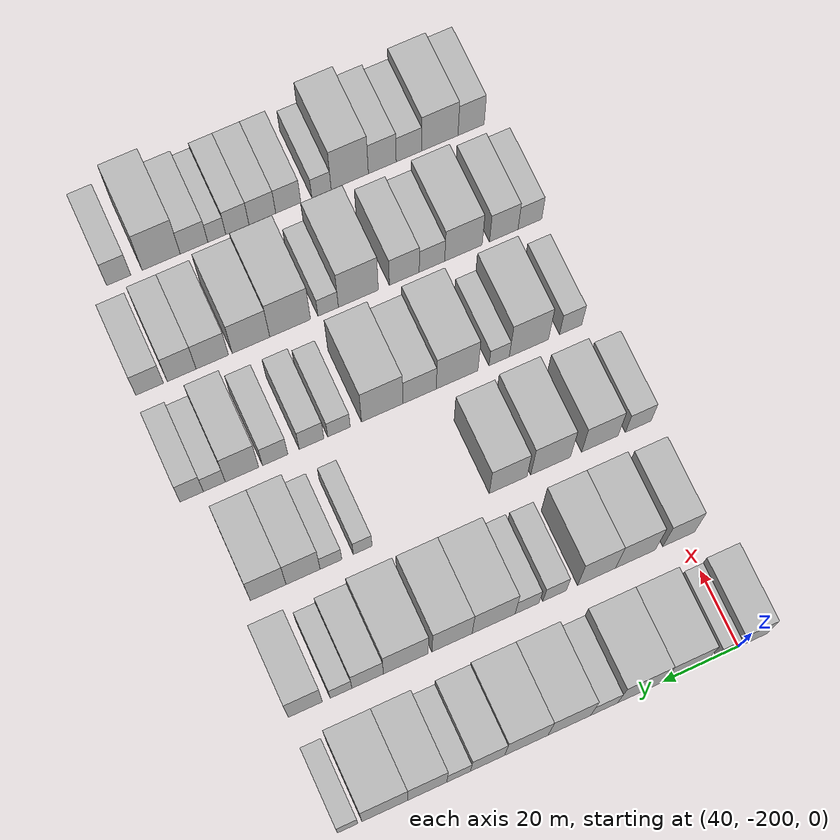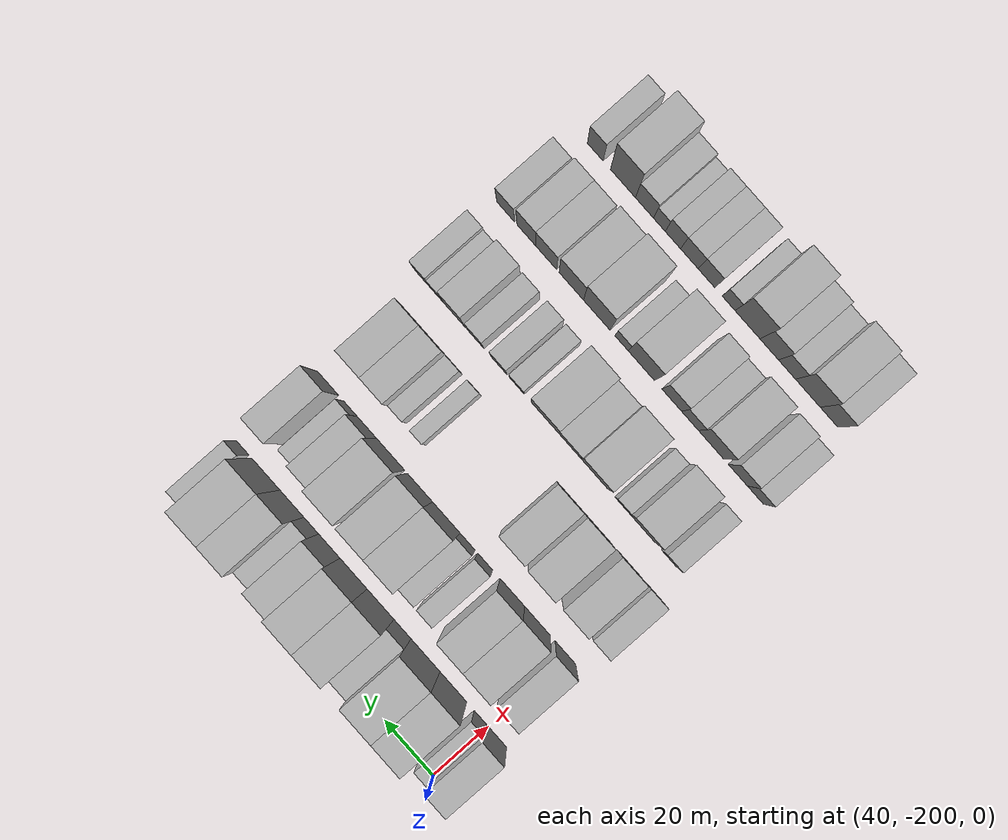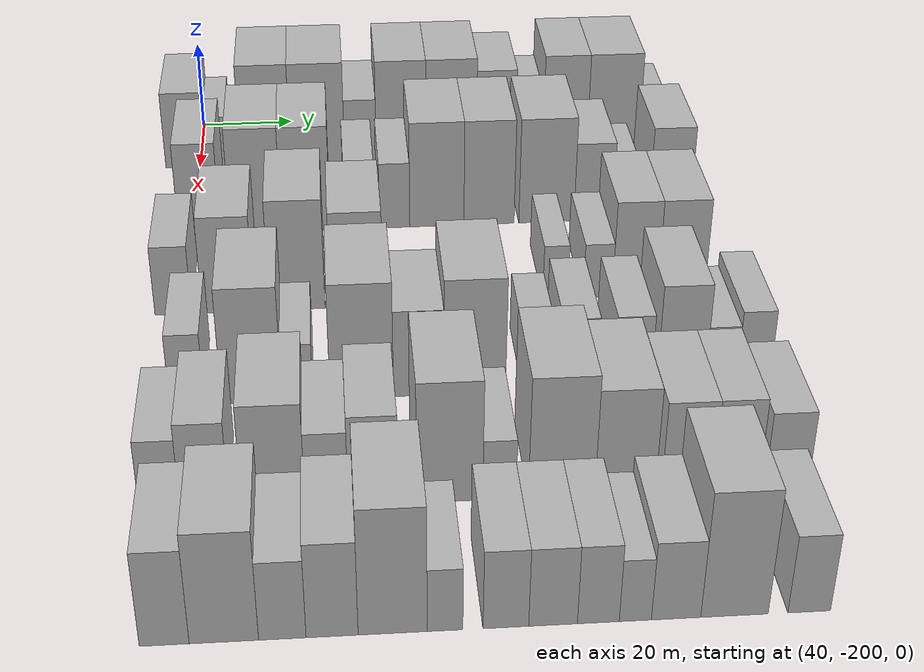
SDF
<sdf version="1.6">
 <world name="default">
  <model name="building_35">
   <static>1</static>
   <pose>50.0000 -203.2133 0 0.000000 0.000000 0.000000</pose>
   <link name="link">
    <pose>0 0 9.00 0 0 0</pose>
    <collision name="collision"><geometry><box><size>20.0000 8.4956 18.0000</size></box></geometry></collision>
    <visual name="visual">
     <cast_shadows>0</cast_shadows>
     <geometry><box><size>20.0000 8.4956 18.0000</size></box></geometry>
     <material>
      <script>
       <uri>model://HANNAS_wall/materials/scripts</uri>
       <uri>model://HANNAS_wall/materials/textures</uri>
       <name>vrc/HANNAS_wall</name>
      </script>
     </material>
    </visual>
   </link>
  </model>
  <model name="building_36">
   <static>1</static>
   <pose>50.0000 -196.5370 0 0.000000 0.000000 0.000000</pose>
   <link name="link">
    <pose>0 0 6.00 0 0 0</pose>
    <collision name="collision"><geometry><box><size>20.0000 4.8569 12.0000</size></box></geometry></collision>
    <visual name="visual">
     <cast_shadows>0</cast_shadows>
     <geometry><box><size>20.0000 4.8569 12.0000</size></box></geometry>
     <material>
      <script>
       <uri>model://HANNAS_wall/materials/scripts</uri>
       <uri>model://HANNAS_wall/materials/textures</uri>
       <name>vrc/HANNAS_wall</name>
      </script>
     </material>
    </visual>
   </link>
  </model>
  <model name="building_37">
   <static>1</static>
   <pose>50.0000 -185.6003 0 0.000000 0.000000 0.000000</pose>
   <link name="link">
    <pose>0 0 12.00 0 0 0</pose>
    <collision name="collision"><geometry><box><size>20.0000 11.0165 24.0000</size></box></geometry></collision>
    <visual name="visual">
     <cast_shadows>0</cast_shadows>
     <geometry><box><size>20.0000 11.0165 24.0000</size></box></geometry>
     <material>
      <script>
       <uri>model://HANNAS_wall/materials/scripts</uri>
       <uri>model://HANNAS_wall/materials/textures</uri>
       <name>vrc/HANNAS_wall</name>
      </script>
     </material>
    </visual>
   </link>
  </model>
  <model name="building_38">
   <static>1</static>
   <pose>50.0000 -174.1456 0 0.000000 0.000000 0.000000</pose>
   <link name="link">
    <pose>0 0 12.00 0 0 0</pose>
    <collision name="collision"><geometry><box><size>20.0000 11.8929 24.0000</size></box></geometry></collision>
    <visual name="visual">
     <cast_shadows>0</cast_shadows>
     <geometry><box><size>20.0000 11.8929 24.0000</size></box></geometry>
     <material>
      <script>
       <uri>model://HANNAS_wall/materials/scripts</uri>
       <uri>model://HANNAS_wall/materials/textures</uri>
       <name>vrc/HANNAS_wall</name>
      </script>
     </material>
    </visual>
   </link>
  </model>
  <model name="building_39">
   <static>1</static>
   <pose>50.0000 -164.7043 0 0.000000 0.000000 0.000000</pose>
   <link name="link">
    <pose>0 0 7.50 0 0 0</pose>
    <collision name="collision"><geometry><box><size>20.0000 6.9897 15.0000</size></box></geometry></collision>
    <visual name="visual">
     <cast_shadows>0</cast_shadows>
     <geometry><box><size>20.0000 6.9897 15.0000</size></box></geometry>
     <material>
      <script>
       <uri>model://HANNAS_wall/materials/scripts</uri>
       <uri>model://HANNAS_wall/materials/textures</uri>
       <name>vrc/HANNAS_wall</name>
      </script>
     </material>
    </visual>
   </link>
  </model>
  <model name="building_40">
   <static>1</static>
   <pose>50.0000 -155.7014 0 0.000000 0.000000 0.000000</pose>
   <link name="link">
    <pose>0 0 12.00 0 0 0</pose>
    <collision name="collision"><geometry><box><size>20.0000 11.0162 24.0000</size></box></geometry></collision>
    <visual name="visual">
     <cast_shadows>0</cast_shadows>
     <geometry><box><size>20.0000 11.0162 24.0000</size></box></geometry>
     <material>
      <script>
       <uri>model://HANNAS_wall/materials/scripts</uri>
       <uri>model://HANNAS_wall/materials/textures</uri>
       <name>vrc/HANNAS_wall</name>
      </script>
     </material>
    </visual>
   </link>
  </model>
  <model name="building_41">
   <static>1</static>
   <pose>50.0000 -144.5966 0 0.000000 0.000000 0.000000</pose>
   <link name="link">
    <pose>0 0 12.00 0 0 0</pose>
    <collision name="collision"><geometry><box><size>20.0000 11.1933 24.0000</size></box></geometry></collision>
    <visual name="visual">
     <cast_shadows>0</cast_shadows>
     <geometry><box><size>20.0000 11.1933 24.0000</size></box></geometry>
     <material>
      <script>
       <uri>model://HANNAS_wall/materials/scripts</uri>
       <uri>model://HANNAS_wall/materials/textures</uri>
       <name>vrc/HANNAS_wall</name>
      </script>
     </material>
    </visual>
   </link>
  </model>
  <model name="building_42">
   <static>1</static>
   <pose>50.0000 -134.6149 0 0.000000 0.000000 0.000000</pose>
   <link name="link">
    <pose>0 0 10.50 0 0 0</pose>
    <collision name="collision"><geometry><box><size>20.0000 8.7701 21.0000</size></box></geometry></collision>
    <visual name="visual">
     <cast_shadows>0</cast_shadows>
     <geometry><box><size>20.0000 8.7701 21.0000</size></box></geometry>
     <material>
      <script>
       <uri>model://HANNAS_wall/materials/scripts</uri>
       <uri>model://HANNAS_wall/materials/textures</uri>
       <name>vrc/HANNAS_wall</name>
      </script>
     </material>
    </visual>
   </link>
  </model>
  <model name="building_43">
   <static>1</static>
   <pose>50.0000 -127.2108 0 0.000000 0.000000 0.000000</pose>
   <link name="link">
    <pose>0 0 7.50 0 0 0</pose>
    <collision name="collision"><geometry><box><size>20.0000 6.0381 15.0000</size></box></geometry></collision>
    <visual name="visual">
     <cast_shadows>0</cast_shadows>
     <geometry><box><size>20.0000 6.0381 15.0000</size></box></geometry>
     <material>
      <script>
       <uri>model://HANNAS_wall/materials/scripts</uri>
       <uri>model://HANNAS_wall/materials/textures</uri>
       <name>vrc/HANNAS_wall</name>
      </script>
     </material>
    </visual>
   </link>
  </model>
  <model name="building_44">
   <static>1</static>
   <pose>50.0000 -119.2499 0 0.000000 0.000000 0.000000</pose>
   <link name="link">
    <pose>0 0 12.00 0 0 0</pose>
    <collision name="collision"><geometry><box><size>20.0000 9.8837 24.0000</size></box></geometry></collision>
    <visual name="visual">
     <cast_shadows>0</cast_shadows>
     <geometry><box><size>20.0000 9.8837 24.0000</size></box></geometry>
     <material>
      <script>
       <uri>model://HANNAS_wall/materials/scripts</uri>
       <uri>model://HANNAS_wall/materials/textures</uri>
       <name>vrc/HANNAS_wall</name>
      </script>
     </material>
    </visual>
   </link>
  </model>
  <model name="building_45">
   <static>1</static>
   <pose>50.0000 -108.4909 0 0.000000 0.000000 0.000000</pose>
   <link name="link">
    <pose>0 0 12.00 0 0 0</pose>
    <collision name="collision"><geometry><box><size>20.0000 11.6342 24.0000</size></box></geometry></collision>
    <visual name="visual">
     <cast_shadows>0</cast_shadows>
     <geometry><box><size>20.0000 11.6342 24.0000</size></box></geometry>
     <material>
      <script>
       <uri>model://HANNAS_wall/materials/scripts</uri>
       <uri>model://HANNAS_wall/materials/textures</uri>
       <name>vrc/HANNAS_wall</name>
      </script>
     </material>
    </visual>
   </link>
  </model>
  <model name="building_46">
   <static>1</static>
   <pose>50.0000 -99.0924 0 0.000000 0.000000 0.000000</pose>
   <link name="link">
    <pose>0 0 6.00 0 0 0</pose>
    <collision name="collision"><geometry><box><size>20.0000 5.1629 12.0000</size></box></geometry></collision>
    <visual name="visual">
     <cast_shadows>0</cast_shadows>
     <geometry><box><size>20.0000 5.1629 12.0000</size></box></geometry>
     <material>
      <script>
       <uri>model://HANNAS_wall/materials/scripts</uri>
       <uri>model://HANNAS_wall/materials/textures</uri>
       <name>vrc/HANNAS_wall</name>
      </script>
     </material>
    </visual>
   </link>
  </model>
  <model name="building_140">
   <static>1</static>
   <pose>79.0000 -198.6680 0 0.000000 0.000000 0.000000</pose>
   <link name="link">
    <pose>0 0 10.50 0 0 0</pose>
    <collision name="collision"><geometry><box><size>20.0000 8.4875 21.0000</size></box></geometry></collision>
    <visual name="visual">
     <cast_shadows>0</cast_shadows>
     <geometry><box><size>20.0000 8.4875 21.0000</size></box></geometry>
     <material>
      <script>
       <uri>model://HANNAS_wall/materials/scripts</uri>
       <uri>model://HANNAS_wall/materials/textures</uri>
       <name>vrc/HANNAS_wall</name>
      </script>
     </material>
    </visual>
   </link>
  </model>
  <model name="building_141">
   <static>1</static>
   <pose>79.0000 -187.1591 0 0.000000 0.000000 0.000000</pose>
   <link name="link">
    <pose>0 0 12.00 0 0 0</pose>
    <collision name="collision"><geometry><box><size>20.0000 10.5304 24.0000</size></box></geometry></collision>
    <visual name="visual">
     <cast_shadows>0</cast_shadows>
     <geometry><box><size>20.0000 10.5304 24.0000</size></box></geometry>
     <material>
      <script>
       <uri>model://HANNAS_wall/materials/scripts</uri>
       <uri>model://HANNAS_wall/materials/textures</uri>
       <name>vrc/HANNAS_wall</name>
      </script>
     </material>
    </visual>
   </link>
  </model>
  <model name="building_142">
   <static>1</static>
   <pose>79.0000 -176.8806 0 0.000000 0.000000 0.000000</pose>
   <link name="link">
    <pose>0 0 12.00 0 0 0</pose>
    <collision name="collision"><geometry><box><size>20.0000 10.0266 24.0000</size></box></geometry></collision>
    <visual name="visual">
     <cast_shadows>0</cast_shadows>
     <geometry><box><size>20.0000 10.0266 24.0000</size></box></geometry>
     <material>
      <script>
       <uri>model://HANNAS_wall/materials/scripts</uri>
       <uri>model://HANNAS_wall/materials/textures</uri>
       <name>vrc/HANNAS_wall</name>
      </script>
     </material>
    </visual>
   </link>
  </model>
  <model name="building_143">
   <static>1</static>
   <pose>79.0000 -165.7952 0 0.000000 0.000000 0.000000</pose>
   <link name="link">
    <pose>0 0 7.50 0 0 0</pose>
    <collision name="collision"><geometry><box><size>20.0000 6.1441 15.0000</size></box></geometry></collision>
    <visual name="visual">
     <cast_shadows>0</cast_shadows>
     <geometry><box><size>20.0000 6.1441 15.0000</size></box></geometry>
     <material>
      <script>
       <uri>model://HANNAS_wall/materials/scripts</uri>
       <uri>model://HANNAS_wall/materials/textures</uri>
       <name>vrc/HANNAS_wall</name>
      </script>
     </material>
    </visual>
   </link>
  </model>
  <model name="building_144">
   <static>1</static>
   <pose>79.0000 -158.5902 0 0.000000 0.000000 0.000000</pose>
   <link name="link">
    <pose>0 0 7.50 0 0 0</pose>
    <collision name="collision"><geometry><box><size>20.0000 6.2660 15.0000</size></box></geometry></collision>
    <visual name="visual">
     <cast_shadows>0</cast_shadows>
     <geometry><box><size>20.0000 6.2660 15.0000</size></box></geometry>
     <material>
      <script>
       <uri>model://HANNAS_wall/materials/scripts</uri>
       <uri>model://HANNAS_wall/materials/textures</uri>
       <name>vrc/HANNAS_wall</name>
      </script>
     </material>
    </visual>
   </link>
  </model>
  <model name="building_145">
   <static>1</static>
   <pose>79.0000 -149.8402 0 0.000000 0.000000 0.000000</pose>
   <link name="link">
    <pose>0 0 12.00 0 0 0</pose>
    <collision name="collision"><geometry><box><size>20.0000 11.2340 24.0000</size></box></geometry></collision>
    <visual name="visual">
     <cast_shadows>0</cast_shadows>
     <geometry><box><size>20.0000 11.2340 24.0000</size></box></geometry>
     <material>
      <script>
       <uri>model://HANNAS_wall/materials/scripts</uri>
       <uri>model://HANNAS_wall/materials/textures</uri>
       <name>vrc/HANNAS_wall</name>
      </script>
     </material>
    </visual>
   </link>
  </model>
  <model name="building_146">
   <static>1</static>
   <pose>79.0000 -138.9980 0 0.000000 0.000000 0.000000</pose>
   <link name="link">
    <pose>0 0 12.00 0 0 0</pose>
    <collision name="collision"><geometry><box><size>20.0000 10.4503 24.0000</size></box></geometry></collision>
    <visual name="visual">
     <cast_shadows>0</cast_shadows>
     <geometry><box><size>20.0000 10.4503 24.0000</size></box></geometry>
     <material>
      <script>
       <uri>model://HANNAS_wall/materials/scripts</uri>
       <uri>model://HANNAS_wall/materials/textures</uri>
       <name>vrc/HANNAS_wall</name>
      </script>
     </material>
    </visual>
   </link>
  </model>
  <model name="building_147">
   <static>1</static>
   <pose>79.0000 -127.0175 0 0.000000 0.000000 0.000000</pose>
   <link name="link">
    <pose>0 0 12.00 0 0 0</pose>
    <collision name="collision"><geometry><box><size>20.0000 11.5106 24.0000</size></box></geometry></collision>
    <visual name="visual">
     <cast_shadows>0</cast_shadows>
     <geometry><box><size>20.0000 11.5106 24.0000</size></box></geometry>
     <material>
      <script>
       <uri>model://HANNAS_wall/materials/scripts</uri>
       <uri>model://HANNAS_wall/materials/textures</uri>
       <name>vrc/HANNAS_wall</name>
      </script>
     </material>
    </visual>
   </link>
  </model>
  <model name="building_148">
   <static>1</static>
   <pose>79.0000 -117.2047 0 0.000000 0.000000 0.000000</pose>
   <link name="link">
    <pose>0 0 9.00 0 0 0</pose>
    <collision name="collision"><geometry><box><size>20.0000 8.1152 18.0000</size></box></geometry></collision>
    <visual name="visual">
     <cast_shadows>0</cast_shadows>
     <geometry><box><size>20.0000 8.1152 18.0000</size></box></geometry>
     <material>
      <script>
       <uri>model://HANNAS_wall/materials/scripts</uri>
       <uri>model://HANNAS_wall/materials/textures</uri>
       <name>vrc/HANNAS_wall</name>
      </script>
     </material>
    </visual>
   </link>
  </model>
  <model name="building_149">
   <static>1</static>
   <pose>79.0000 -110.3679 0 0.000000 0.000000 0.000000</pose>
   <link name="link">
    <pose>0 0 6.00 0 0 0</pose>
    <collision name="collision"><geometry><box><size>20.0000 5.5584 12.0000</size></box></geometry></collision>
    <visual name="visual">
     <cast_shadows>0</cast_shadows>
     <geometry><box><size>20.0000 5.5584 12.0000</size></box></geometry>
     <material>
      <script>
       <uri>model://HANNAS_wall/materials/scripts</uri>
       <uri>model://HANNAS_wall/materials/textures</uri>
       <name>vrc/HANNAS_wall</name>
      </script>
     </material>
    </visual>
   </link>
  </model>
  <model name="building_150">
   <static>1</static>
   <pose>79.0000 -101.2359 0 0.000000 0.000000 0.000000</pose>
   <link name="link">
    <pose>0 0 10.50 0 0 0</pose>
    <collision name="collision"><geometry><box><size>20.0000 8.7056 21.0000</size></box></geometry></collision>
    <visual name="visual">
     <cast_shadows>0</cast_shadows>
     <geometry><box><size>20.0000 8.7056 21.0000</size></box></geometry>
     <material>
      <script>
       <uri>model://HANNAS_wall/materials/scripts</uri>
       <uri>model://HANNAS_wall/materials/textures</uri>
       <name>vrc/HANNAS_wall</name>
      </script>
     </material>
    </visual>
   </link>
  </model>
  <model name="building_250">
   <static>1</static>
   <pose>108.0000 -202.2233 0 0.000000 0.000000 0.000000</pose>
   <link name="link">
    <pose>0 0 7.50 0 0 0</pose>
    <collision name="collision"><geometry><box><size>20.0000 6.9358 15.0000</size></box></geometry></collision>
    <visual name="visual">
     <cast_shadows>0</cast_shadows>
     <geometry><box><size>20.0000 6.9358 15.0000</size></box></geometry>
     <material>
      <script>
       <uri>model://HANNAS_wall/materials/scripts</uri>
       <uri>model://HANNAS_wall/materials/textures</uri>
       <name>vrc/HANNAS_wall</name>
      </script>
     </material>
    </visual>
   </link>
  </model>
  <model name="building_251">
   <static>1</static>
   <pose>108.0000 -191.8537 0 0.000000 0.000000 0.000000</pose>
   <link name="link">
    <pose>0 0 10.50 0 0 0</pose>
    <collision name="collision"><geometry><box><size>20.0000 9.8035 21.0000</size></box></geometry></collision>
    <visual name="visual">
     <cast_shadows>0</cast_shadows>
     <geometry><box><size>20.0000 9.8035 21.0000</size></box></geometry>
     <material>
      <script>
       <uri>model://HANNAS_wall/materials/scripts</uri>
       <uri>model://HANNAS_wall/materials/textures</uri>
       <name>vrc/HANNAS_wall</name>
      </script>
     </material>
    </visual>
   </link>
  </model>
  <model name="building_252">
   <static>1</static>
   <pose>108.0000 -178.6489 0 0.000000 0.000000 0.000000</pose>
   <link name="link">
    <pose>0 0 12.00 0 0 0</pose>
    <collision name="collision"><geometry><box><size>20.0000 10.6063 24.0000</size></box></geometry></collision>
    <visual name="visual">
     <cast_shadows>0</cast_shadows>
     <geometry><box><size>20.0000 10.6063 24.0000</size></box></geometry>
     <material>
      <script>
       <uri>model://HANNAS_wall/materials/scripts</uri>
       <uri>model://HANNAS_wall/materials/textures</uri>
       <name>vrc/HANNAS_wall</name>
      </script>
     </material>
    </visual>
   </link>
  </model>
  <model name="building_253">
   <static>1</static>
   <pose>108.0000 -167.3290 0 0.000000 0.000000 0.000000</pose>
   <link name="link">
    <pose>0 0 10.50 0 0 0</pose>
    <collision name="collision"><geometry><box><size>20.0000 10.0335 21.0000</size></box></geometry></collision>
    <visual name="visual">
     <cast_shadows>0</cast_shadows>
     <geometry><box><size>20.0000 10.0335 21.0000</size></box></geometry>
     <material>
      <script>
       <uri>model://HANNAS_wall/materials/scripts</uri>
       <uri>model://HANNAS_wall/materials/textures</uri>
       <name>vrc/HANNAS_wall</name>
      </script>
     </material>
    </visual>
   </link>
  </model>
  <model name="building_254">
   <static>1</static>
   <pose>108.0000 -128.9897 0 0.000000 0.000000 0.000000</pose>
   <link name="link">
    <pose>0 0 6.00 0 0 0</pose>
    <collision name="collision"><geometry><box><size>20.0000 4.8816 12.0000</size></box></geometry></collision>
    <visual name="visual">
     <cast_shadows>0</cast_shadows>
     <geometry><box><size>20.0000 4.8816 12.0000</size></box></geometry>
     <material>
      <script>
       <uri>model://HANNAS_wall/materials/scripts</uri>
       <uri>model://HANNAS_wall/materials/textures</uri>
       <name>vrc/HANNAS_wall</name>
      </script>
     </material>
    </visual>
   </link>
  </model>
  <model name="building_255">
   <static>1</static>
   <pose>108.0000 -120.7221 0 0.000000 0.000000 0.000000</pose>
   <link name="link">
    <pose>0 0 6.00 0 0 0</pose>
    <collision name="collision"><geometry><box><size>20.0000 5.6535 12.0000</size></box></geometry></collision>
    <visual name="visual">
     <cast_shadows>0</cast_shadows>
     <geometry><box><size>20.0000 5.6535 12.0000</size></box></geometry>
     <material>
      <script>
       <uri>model://HANNAS_wall/materials/scripts</uri>
       <uri>model://HANNAS_wall/materials/textures</uri>
       <name>vrc/HANNAS_wall</name>
      </script>
     </material>
    </visual>
   </link>
  </model>
  <model name="building_256">
   <static>1</static>
   <pose>108.0000 -113.4718 0 0.000000 0.000000 0.000000</pose>
   <link name="link">
    <pose>0 0 10.50 0 0 0</pose>
    <collision name="collision"><geometry><box><size>20.0000 8.8472 21.0000</size></box></geometry></collision>
    <visual name="visual">
     <cast_shadows>0</cast_shadows>
     <geometry><box><size>20.0000 8.8472 21.0000</size></box></geometry>
     <material>
      <script>
       <uri>model://HANNAS_wall/materials/scripts</uri>
       <uri>model://HANNAS_wall/materials/textures</uri>
       <name>vrc/HANNAS_wall</name>
      </script>
     </material>
    </visual>
   </link>
  </model>
  <model name="building_257">
   <static>1</static>
   <pose>108.0000 -104.4273 0 0.000000 0.000000 0.000000</pose>
   <link name="link">
    <pose>0 0 10.50 0 0 0</pose>
    <collision name="collision"><geometry><box><size>20.0000 9.2418 21.0000</size></box></geometry></collision>
    <visual name="visual">
     <cast_shadows>0</cast_shadows>
     <geometry><box><size>20.0000 9.2418 21.0000</size></box></geometry>
     <material>
      <script>
       <uri>model://HANNAS_wall/materials/scripts</uri>
       <uri>model://HANNAS_wall/materials/textures</uri>
       <name>vrc/HANNAS_wall</name>
      </script>
     </material>
    </visual>
   </link>
  </model>
  <model name="building_362">
   <static>1</static>
   <pose>137.0000 -198.0025 0 0.000000 0.000000 0.000000</pose>
   <link name="link">
    <pose>0 0 7.50 0 0 0</pose>
    <collision name="collision"><geometry><box><size>20.0000 6.0691 15.0000</size></box></geometry></collision>
    <visual name="visual">
     <cast_shadows>0</cast_shadows>
     <geometry><box><size>20.0000 6.0691 15.0000</size></box></geometry>
     <material>
      <script>
       <uri>model://HANNAS_wall/materials/scripts</uri>
       <uri>model://HANNAS_wall/materials/textures</uri>
       <name>vrc/HANNAS_wall</name>
      </script>
     </material>
    </visual>
   </link>
  </model>
  <model name="building_363">
   <static>1</static>
   <pose>137.0000 -186.6598 0 0.000000 0.000000 0.000000</pose>
   <link name="link">
    <pose>0 0 12.00 0 0 0</pose>
    <collision name="collision"><geometry><box><size>20.0000 10.6162 24.0000</size></box></geometry></collision>
    <visual name="visual">
     <cast_shadows>0</cast_shadows>
     <geometry><box><size>20.0000 10.6162 24.0000</size></box></geometry>
     <material>
      <script>
       <uri>model://HANNAS_wall/materials/scripts</uri>
       <uri>model://HANNAS_wall/materials/textures</uri>
       <name>vrc/HANNAS_wall</name>
      </script>
     </material>
    </visual>
   </link>
  </model>
  <model name="building_364">
   <static>1</static>
   <pose>137.0000 -178.6073 0 0.000000 0.000000 0.000000</pose>
   <link name="link">
    <pose>0 0 6.00 0 0 0</pose>
    <collision name="collision"><geometry><box><size>20.0000 5.4889 12.0000</size></box></geometry></collision>
    <visual name="visual">
     <cast_shadows>0</cast_shadows>
     <geometry><box><size>20.0000 5.4889 12.0000</size></box></geometry>
     <material>
      <script>
       <uri>model://HANNAS_wall/materials/scripts</uri>
       <uri>model://HANNAS_wall/materials/textures</uri>
       <name>vrc/HANNAS_wall</name>
      </script>
     </material>
    </visual>
   </link>
  </model>
  <model name="building_365">
   <static>1</static>
   <pose>137.0000 -167.2665 0 0.000000 0.000000 0.000000</pose>
   <link name="link">
    <pose>0 0 12.00 0 0 0</pose>
    <collision name="collision"><geometry><box><size>20.0000 11.1927 24.0000</size></box></geometry></collision>
    <visual name="visual">
     <cast_shadows>0</cast_shadows>
     <geometry><box><size>20.0000 11.1927 24.0000</size></box></geometry>
     <material>
      <script>
       <uri>model://HANNAS_wall/materials/scripts</uri>
       <uri>model://HANNAS_wall/materials/textures</uri>
       <name>vrc/HANNAS_wall</name>
      </script>
     </material>
    </visual>
   </link>
  </model>
  <model name="building_366">
   <static>1</static>
   <pose>137.0000 -157.2012 0 0.000000 0.000000 0.000000</pose>
   <link name="link">
    <pose>0 0 9.00 0 0 0</pose>
    <collision name="collision"><geometry><box><size>20.0000 8.9378 18.0000</size></box></geometry></collision>
    <visual name="visual">
     <cast_shadows>0</cast_shadows>
     <geometry><box><size>20.0000 8.9378 18.0000</size></box></geometry>
     <material>
      <script>
       <uri>model://HANNAS_wall/materials/scripts</uri>
       <uri>model://HANNAS_wall/materials/textures</uri>
       <name>vrc/HANNAS_wall</name>
      </script>
     </material>
    </visual>
   </link>
  </model>
  <model name="building_367">
   <static>1</static>
   <pose>137.0000 -147.2276 0 0.000000 0.000000 0.000000</pose>
   <link name="link">
    <pose>0 0 12.00 0 0 0</pose>
    <collision name="collision"><geometry><box><size>20.0000 11.0094 24.0000</size></box></geometry></collision>
    <visual name="visual">
     <cast_shadows>0</cast_shadows>
     <geometry><box><size>20.0000 11.0094 24.0000</size></box></geometry>
     <material>
      <script>
       <uri>model://HANNAS_wall/materials/scripts</uri>
       <uri>model://HANNAS_wall/materials/textures</uri>
       <name>vrc/HANNAS_wall</name>
      </script>
     </material>
    </visual>
   </link>
  </model>
  <model name="building_368">
   <static>1</static>
   <pose>137.0000 -135.7449 0 0.000000 0.000000 0.000000</pose>
   <link name="link">
    <pose>0 0 6.00 0 0 0</pose>
    <collision name="collision"><geometry><box><size>20.0000 5.9561 12.0000</size></box></geometry></collision>
    <visual name="visual">
     <cast_shadows>0</cast_shadows>
     <geometry><box><size>20.0000 5.9561 12.0000</size></box></geometry>
     <material>
      <script>
       <uri>model://HANNAS_wall/materials/scripts</uri>
       <uri>model://HANNAS_wall/materials/textures</uri>
       <name>vrc/HANNAS_wall</name>
      </script>
     </material>
    </visual>
   </link>
  </model>
  <model name="building_369">
   <static>1</static>
   <pose>137.0000 -128.4977 0 0.000000 0.000000 0.000000</pose>
   <link name="link">
    <pose>0 0 7.50 0 0 0</pose>
    <collision name="collision"><geometry><box><size>20.0000 6.5382 15.0000</size></box></geometry></collision>
    <visual name="visual">
     <cast_shadows>0</cast_shadows>
     <geometry><box><size>20.0000 6.5382 15.0000</size></box></geometry>
     <material>
      <script>
       <uri>model://HANNAS_wall/materials/scripts</uri>
       <uri>model://HANNAS_wall/materials/textures</uri>
       <name>vrc/HANNAS_wall</name>
      </script>
     </material>
    </visual>
   </link>
  </model>
  <model name="building_370">
   <static>1</static>
   <pose>137.0000 -118.8986 0 0.000000 0.000000 0.000000</pose>
   <link name="link">
    <pose>0 0 7.50 0 0 0</pose>
    <collision name="collision"><geometry><box><size>20.0000 6.6600 15.0000</size></box></geometry></collision>
    <visual name="visual">
     <cast_shadows>0</cast_shadows>
     <geometry><box><size>20.0000 6.6600 15.0000</size></box></geometry>
     <material>
      <script>
       <uri>model://HANNAS_wall/materials/scripts</uri>
       <uri>model://HANNAS_wall/materials/textures</uri>
       <name>vrc/HANNAS_wall</name>
      </script>
     </material>
    </visual>
   </link>
  </model>
  <model name="building_371">
   <static>1</static>
   <pose>137.0000 -110.1887 0 0.000000 0.000000 0.000000</pose>
   <link name="link">
    <pose>0 0 10.50 0 0 0</pose>
    <collision name="collision"><geometry><box><size>20.0000 8.7599 21.0000</size></box></geometry></collision>
    <visual name="visual">
     <cast_shadows>0</cast_shadows>
     <geometry><box><size>20.0000 8.7599 21.0000</size></box></geometry>
     <material>
      <script>
       <uri>model://HANNAS_wall/materials/scripts</uri>
       <uri>model://HANNAS_wall/materials/textures</uri>
       <name>vrc/HANNAS_wall</name>
      </script>
     </material>
    </visual>
   </link>
  </model>
  <model name="building_372">
   <static>1</static>
   <pose>137.0000 -102.9488 0 0.000000 0.000000 0.000000</pose>
   <link name="link">
    <pose>0 0 6.00 0 0 0</pose>
    <collision name="collision"><geometry><box><size>20.0000 5.7199 12.0000</size></box></geometry></collision>
    <visual name="visual">
     <cast_shadows>0</cast_shadows>
     <geometry><box><size>20.0000 5.7199 12.0000</size></box></geometry>
     <material>
      <script>
       <uri>model://HANNAS_wall/materials/scripts</uri>
       <uri>model://HANNAS_wall/materials/textures</uri>
       <name>vrc/HANNAS_wall</name>
      </script>
     </material>
    </visual>
   </link>
  </model>
  <model name="building_373">
   <static>1</static>
   <pose>137.0000 -97.0460 0 0.000000 0.000000 0.000000</pose>
   <link name="link">
    <pose>0 0 7.50 0 0 0</pose>
    <collision name="collision"><geometry><box><size>20.0000 6.0856 15.0000</size></box></geometry></collision>
    <visual name="visual">
     <cast_shadows>0</cast_shadows>
     <geometry><box><size>20.0000 6.0856 15.0000</size></box></geometry>
     <material>
      <script>
       <uri>model://HANNAS_wall/materials/scripts</uri>
       <uri>model://HANNAS_wall/materials/textures</uri>
       <name>vrc/HANNAS_wall</name>
      </script>
     </material>
    </visual>
   </link>
  </model>
  <model name="building_481">
   <static>1</static>
   <pose>166.0000 -200.7213 0 0.000000 0.000000 0.000000</pose>
   <link name="link">
    <pose>0 0 7.50 0 0 0</pose>
    <collision name="collision"><geometry><box><size>20.0000 6.5263 15.0000</size></box></geometry></collision>
    <visual name="visual">
     <cast_shadows>0</cast_shadows>
     <geometry><box><size>20.0000 6.5263 15.0000</size></box></geometry>
     <material>
      <script>
       <uri>model://HANNAS_wall/materials/scripts</uri>
       <uri>model://HANNAS_wall/materials/textures</uri>
       <name>vrc/HANNAS_wall</name>
      </script>
     </material>
    </visual>
   </link>
  </model>
  <model name="building_482">
   <static>1</static>
   <pose>166.0000 -193.5367 0 0.000000 0.000000 0.000000</pose>
   <link name="link">
    <pose>0 0 9.00 0 0 0</pose>
    <collision name="collision"><geometry><box><size>20.0000 7.8428 18.0000</size></box></geometry></collision>
    <visual name="visual">
     <cast_shadows>0</cast_shadows>
     <geometry><box><size>20.0000 7.8428 18.0000</size></box></geometry>
     <material>
      <script>
       <uri>model://HANNAS_wall/materials/scripts</uri>
       <uri>model://HANNAS_wall/materials/textures</uri>
       <name>vrc/HANNAS_wall</name>
      </script>
     </material>
    </visual>
   </link>
  </model>
  <model name="building_483">
   <static>1</static>
   <pose>166.0000 -182.4957 0 0.000000 0.000000 0.000000</pose>
   <link name="link">
    <pose>0 0 10.50 0 0 0</pose>
    <collision name="collision"><geometry><box><size>20.0000 10.2390 21.0000</size></box></geometry></collision>
    <visual name="visual">
     <cast_shadows>0</cast_shadows>
     <geometry><box><size>20.0000 10.2390 21.0000</size></box></geometry>
     <material>
      <script>
       <uri>model://HANNAS_wall/materials/scripts</uri>
       <uri>model://HANNAS_wall/materials/textures</uri>
       <name>vrc/HANNAS_wall</name>
      </script>
     </material>
    </visual>
   </link>
  </model>
  <model name="building_484">
   <static>1</static>
   <pose>166.0000 -173.9035 0 0.000000 0.000000 0.000000</pose>
   <link name="link">
    <pose>0 0 7.50 0 0 0</pose>
    <collision name="collision"><geometry><box><size>20.0000 6.9455 15.0000</size></box></geometry></collision>
    <visual name="visual">
     <cast_shadows>0</cast_shadows>
     <geometry><box><size>20.0000 6.9455 15.0000</size></box></geometry>
     <material>
      <script>
       <uri>model://HANNAS_wall/materials/scripts</uri>
       <uri>model://HANNAS_wall/materials/textures</uri>
       <name>vrc/HANNAS_wall</name>
      </script>
     </material>
    </visual>
   </link>
  </model>
  <model name="building_485">
   <static>1</static>
   <pose>166.0000 -166.3797 0 0.000000 0.000000 0.000000</pose>
   <link name="link">
    <pose>0 0 9.00 0 0 0</pose>
    <collision name="collision"><geometry><box><size>20.0000 8.1021 18.0000</size></box></geometry></collision>
    <visual name="visual">
     <cast_shadows>0</cast_shadows>
     <geometry><box><size>20.0000 8.1021 18.0000</size></box></geometry>
     <material>
      <script>
       <uri>model://HANNAS_wall/materials/scripts</uri>
       <uri>model://HANNAS_wall/materials/textures</uri>
       <name>vrc/HANNAS_wall</name>
      </script>
     </material>
    </visual>
   </link>
  </model>
  <model name="building_486">
   <static>1</static>
   <pose>166.0000 -153.9371 0 0.000000 0.000000 0.000000</pose>
   <link name="link">
    <pose>0 0 12.00 0 0 0</pose>
    <collision name="collision"><geometry><box><size>20.0000 10.7832 24.0000</size></box></geometry></collision>
    <visual name="visual">
     <cast_shadows>0</cast_shadows>
     <geometry><box><size>20.0000 10.7832 24.0000</size></box></geometry>
     <material>
      <script>
       <uri>model://HANNAS_wall/materials/scripts</uri>
       <uri>model://HANNAS_wall/materials/textures</uri>
       <name>vrc/HANNAS_wall</name>
      </script>
     </material>
    </visual>
   </link>
  </model>
  <model name="building_487">
   <static>1</static>
   <pose>166.0000 -145.8023 0 0.000000 0.000000 0.000000</pose>
   <link name="link">
    <pose>0 0 6.00 0 0 0</pose>
    <collision name="collision"><geometry><box><size>20.0000 5.4863 12.0000</size></box></geometry></collision>
    <visual name="visual">
     <cast_shadows>0</cast_shadows>
     <geometry><box><size>20.0000 5.4863 12.0000</size></box></geometry>
     <material>
      <script>
       <uri>model://HANNAS_wall/materials/scripts</uri>
       <uri>model://HANNAS_wall/materials/textures</uri>
       <name>vrc/HANNAS_wall</name>
      </script>
     </material>
    </visual>
   </link>
  </model>
  <model name="building_488">
   <static>1</static>
   <pose>166.0000 -135.5919 0 0.000000 0.000000 0.000000</pose>
   <link name="link">
    <pose>0 0 12.00 0 0 0</pose>
    <collision name="collision"><geometry><box><size>20.0000 10.9345 24.0000</size></box></geometry></collision>
    <visual name="visual">
     <cast_shadows>0</cast_shadows>
     <geometry><box><size>20.0000 10.9345 24.0000</size></box></geometry>
     <material>
      <script>
       <uri>model://HANNAS_wall/materials/scripts</uri>
       <uri>model://HANNAS_wall/materials/textures</uri>
       <name>vrc/HANNAS_wall</name>
      </script>
     </material>
    </visual>
   </link>
  </model>
  <model name="building_489">
   <static>1</static>
   <pose>166.0000 -125.1217 0 0.000000 0.000000 0.000000</pose>
   <link name="link">
    <pose>0 0 10.50 0 0 0</pose>
    <collision name="collision"><geometry><box><size>20.0000 10.0060 21.0000</size></box></geometry></collision>
    <visual name="visual">
     <cast_shadows>0</cast_shadows>
     <geometry><box><size>20.0000 10.0060 21.0000</size></box></geometry>
     <material>
      <script>
       <uri>model://HANNAS_wall/materials/scripts</uri>
       <uri>model://HANNAS_wall/materials/textures</uri>
       <name>vrc/HANNAS_wall</name>
      </script>
     </material>
    </visual>
   </link>
  </model>
  <model name="building_490">
   <static>1</static>
   <pose>166.0000 -114.8194 0 0.000000 0.000000 0.000000</pose>
   <link name="link">
    <pose>0 0 9.00 0 0 0</pose>
    <collision name="collision"><geometry><box><size>20.0000 8.5986 18.0000</size></box></geometry></collision>
    <visual name="visual">
     <cast_shadows>0</cast_shadows>
     <geometry><box><size>20.0000 8.5986 18.0000</size></box></geometry>
     <material>
      <script>
       <uri>model://HANNAS_wall/materials/scripts</uri>
       <uri>model://HANNAS_wall/materials/textures</uri>
       <name>vrc/HANNAS_wall</name>
      </script>
     </material>
    </visual>
   </link>
  </model>
  <model name="building_491">
   <static>1</static>
   <pose>166.0000 -106.7005 0 0.000000 0.000000 0.000000</pose>
   <link name="link">
    <pose>0 0 9.00 0 0 0</pose>
    <collision name="collision"><geometry><box><size>20.0000 7.6391 18.0000</size></box></geometry></collision>
    <visual name="visual">
     <cast_shadows>0</cast_shadows>
     <geometry><box><size>20.0000 7.6391 18.0000</size></box></geometry>
     <material>
      <script>
       <uri>model://HANNAS_wall/materials/scripts</uri>
       <uri>model://HANNAS_wall/materials/textures</uri>
       <name>vrc/HANNAS_wall</name>
      </script>
     </material>
    </visual>
   </link>
  </model>
  <model name="building_492">
   <static>1</static>
   <pose>166.0000 -98.2272 0 0.000000 0.000000 0.000000</pose>
   <link name="link">
    <pose>0 0 7.50 0 0 0</pose>
    <collision name="collision"><geometry><box><size>20.0000 7.3075 15.0000</size></box></geometry></collision>
    <visual name="visual">
     <cast_shadows>0</cast_shadows>
     <geometry><box><size>20.0000 7.3075 15.0000</size></box></geometry>
     <material>
      <script>
       <uri>model://HANNAS_wall/materials/scripts</uri>
       <uri>model://HANNAS_wall/materials/textures</uri>
       <name>vrc/HANNAS_wall</name>
      </script>
     </material>
    </visual>
   </link>
  </model>
  <model name="building_599">
   <static>1</static>
   <pose>195.0000 -198.1176 0 0.000000 0.000000 0.000000</pose>
   <link name="link">
    <pose>0 0 9.00 0 0 0</pose>
    <collision name="collision"><geometry><box><size>20.0000 7.2548 18.0000</size></box></geometry></collision>
    <visual name="visual">
     <cast_shadows>0</cast_shadows>
     <geometry><box><size>20.0000 7.2548 18.0000</size></box></geometry>
     <material>
      <script>
       <uri>model://HANNAS_wall/materials/scripts</uri>
       <uri>model://HANNAS_wall/materials/textures</uri>
       <name>vrc/HANNAS_wall</name>
      </script>
     </material>
    </visual>
   </link>
  </model>
  <model name="building_600">
   <static>1</static>
   <pose>195.0000 -189.4220 0 0.000000 0.000000 0.000000</pose>
   <link name="link">
    <pose>0 0 10.50 0 0 0</pose>
    <collision name="collision"><geometry><box><size>20.0000 10.1366 21.0000</size></box></geometry></collision>
    <visual name="visual">
     <cast_shadows>0</cast_shadows>
     <geometry><box><size>20.0000 10.1366 21.0000</size></box></geometry>
     <material>
      <script>
       <uri>model://HANNAS_wall/materials/scripts</uri>
       <uri>model://HANNAS_wall/materials/textures</uri>
       <name>vrc/HANNAS_wall</name>
      </script>
     </material>
    </visual>
   </link>
  </model>
  <model name="building_601">
   <static>1</static>
   <pose>195.0000 -180.8720 0 0.000000 0.000000 0.000000</pose>
   <link name="link">
    <pose>0 0 7.50 0 0 0</pose>
    <collision name="collision"><geometry><box><size>20.0000 6.9635 15.0000</size></box></geometry></collision>
    <visual name="visual">
     <cast_shadows>0</cast_shadows>
     <geometry><box><size>20.0000 6.9635 15.0000</size></box></geometry>
     <material>
      <script>
       <uri>model://HANNAS_wall/materials/scripts</uri>
       <uri>model://HANNAS_wall/materials/textures</uri>
       <name>vrc/HANNAS_wall</name>
      </script>
     </material>
    </visual>
   </link>
  </model>
  <model name="building_602">
   <static>1</static>
   <pose>195.0000 -173.5589 0 0.000000 0.000000 0.000000</pose>
   <link name="link">
    <pose>0 0 9.00 0 0 0</pose>
    <collision name="collision"><geometry><box><size>20.0000 7.6628 18.0000</size></box></geometry></collision>
    <visual name="visual">
     <cast_shadows>0</cast_shadows>
     <geometry><box><size>20.0000 7.6628 18.0000</size></box></geometry>
     <material>
      <script>
       <uri>model://HANNAS_wall/materials/scripts</uri>
       <uri>model://HANNAS_wall/materials/textures</uri>
       <name>vrc/HANNAS_wall</name>
      </script>
     </material>
    </visual>
   </link>
  </model>
  <model name="building_603">
   <static>1</static>
   <pose>195.0000 -164.6292 0 0.000000 0.000000 0.000000</pose>
   <link name="link">
    <pose>0 0 12.00 0 0 0</pose>
    <collision name="collision"><geometry><box><size>20.0000 10.1965 24.0000</size></box></geometry></collision>
    <visual name="visual">
     <cast_shadows>0</cast_shadows>
     <geometry><box><size>20.0000 10.1965 24.0000</size></box></geometry>
     <material>
      <script>
       <uri>model://HANNAS_wall/materials/scripts</uri>
       <uri>model://HANNAS_wall/materials/textures</uri>
       <name>vrc/HANNAS_wall</name>
      </script>
     </material>
    </visual>
   </link>
  </model>
  <model name="building_604">
   <static>1</static>
   <pose>195.0000 -156.8814 0 0.000000 0.000000 0.000000</pose>
   <link name="link">
    <pose>0 0 6.00 0 0 0</pose>
    <collision name="collision"><geometry><box><size>20.0000 5.2991 12.0000</size></box></geometry></collision>
    <visual name="visual">
     <cast_shadows>0</cast_shadows>
     <geometry><box><size>20.0000 5.2991 12.0000</size></box></geometry>
     <material>
      <script>
       <uri>model://HANNAS_wall/materials/scripts</uri>
       <uri>model://HANNAS_wall/materials/textures</uri>
       <name>vrc/HANNAS_wall</name>
      </script>
     </material>
    </visual>
   </link>
  </model>
  <model name="building_605">
   <static>1</static>
   <pose>195.0000 -147.8246 0 0.000000 0.000000 0.000000</pose>
   <link name="link">
    <pose>0 0 7.50 0 0 0</pose>
    <collision name="collision"><geometry><box><size>20.0000 6.8145 15.0000</size></box></geometry></collision>
    <visual name="visual">
     <cast_shadows>0</cast_shadows>
     <geometry><box><size>20.0000 6.8145 15.0000</size></box></geometry>
     <material>
      <script>
       <uri>model://HANNAS_wall/materials/scripts</uri>
       <uri>model://HANNAS_wall/materials/textures</uri>
       <name>vrc/HANNAS_wall</name>
      </script>
     </material>
    </visual>
   </link>
  </model>
  <model name="building_606">
   <static>1</static>
   <pose>195.0000 -140.7785 0 0.000000 0.000000 0.000000</pose>
   <link name="link">
    <pose>0 0 7.50 0 0 0</pose>
    <collision name="collision"><geometry><box><size>20.0000 7.2777 15.0000</size></box></geometry></collision>
    <visual name="visual">
     <cast_shadows>0</cast_shadows>
     <geometry><box><size>20.0000 7.2777 15.0000</size></box></geometry>
     <material>
      <script>
       <uri>model://HANNAS_wall/materials/scripts</uri>
       <uri>model://HANNAS_wall/materials/textures</uri>
       <name>vrc/HANNAS_wall</name>
      </script>
     </material>
    </visual>
   </link>
  </model>
  <model name="building_607">
   <static>1</static>
   <pose>195.0000 -134.0016 0 0.000000 0.000000 0.000000</pose>
   <link name="link">
    <pose>0 0 7.50 0 0 0</pose>
    <collision name="collision"><geometry><box><size>20.0000 6.2761 15.0000</size></box></geometry></collision>
    <visual name="visual">
     <cast_shadows>0</cast_shadows>
     <geometry><box><size>20.0000 6.2761 15.0000</size></box></geometry>
     <material>
      <script>
       <uri>model://HANNAS_wall/materials/scripts</uri>
       <uri>model://HANNAS_wall/materials/textures</uri>
       <name>vrc/HANNAS_wall</name>
      </script>
     </material>
    </visual>
   </link>
  </model>
  <model name="building_608">
   <static>1</static>
   <pose>195.0000 -128.4418 0 0.000000 0.000000 0.000000</pose>
   <link name="link">
    <pose>0 0 6.00 0 0 0</pose>
    <collision name="collision"><geometry><box><size>20.0000 4.8436 12.0000</size></box></geometry></collision>
    <visual name="visual">
     <cast_shadows>0</cast_shadows>
     <geometry><box><size>20.0000 4.8436 12.0000</size></box></geometry>
     <material>
      <script>
       <uri>model://HANNAS_wall/materials/scripts</uri>
       <uri>model://HANNAS_wall/materials/textures</uri>
       <name>vrc/HANNAS_wall</name>
      </script>
     </material>
    </visual>
   </link>
  </model>
  <model name="building_609">
   <static>1</static>
   <pose>195.0000 -122.2975 0 0.000000 0.000000 0.000000</pose>
   <link name="link">
    <pose>0 0 7.50 0 0 0</pose>
    <collision name="collision"><geometry><box><size>20.0000 7.4451 15.0000</size></box></geometry></collision>
    <visual name="visual">
     <cast_shadows>0</cast_shadows>
     <geometry><box><size>20.0000 7.4451 15.0000</size></box></geometry>
     <material>
      <script>
       <uri>model://HANNAS_wall/materials/scripts</uri>
       <uri>model://HANNAS_wall/materials/textures</uri>
       <name>vrc/HANNAS_wall</name>
      </script>
     </material>
    </visual>
   </link>
  </model>
  <model name="building_610">
   <static>1</static>
   <pose>195.0000 -113.4577 0 0.000000 0.000000 0.000000</pose>
   <link name="link">
    <pose>0 0 12.00 0 0 0</pose>
    <collision name="collision"><geometry><box><size>20.0000 10.2345 24.0000</size></box></geometry></collision>
    <visual name="visual">
     <cast_shadows>0</cast_shadows>
     <geometry><box><size>20.0000 10.2345 24.0000</size></box></geometry>
     <material>
      <script>
       <uri>model://HANNAS_wall/materials/scripts</uri>
       <uri>model://HANNAS_wall/materials/textures</uri>
       <name>vrc/HANNAS_wall</name>
      </script>
     </material>
    </visual>
   </link>
  </model>
  <model name="building_611">
   <static>1</static>
   <pose>195.0000 -102.0952 0 0.000000 0.000000 0.000000</pose>
   <link name="link">
    <pose>0 0 7.50 0 0 0</pose>
    <collision name="collision"><geometry><box><size>20.0000 6.4906 15.0000</size></box></geometry></collision>
    <visual name="visual">
     <cast_shadows>0</cast_shadows>
     <geometry><box><size>20.0000 6.4906 15.0000</size></box></geometry>
     <material>
      <script>
       <uri>model://HANNAS_wall/materials/scripts</uri>
       <uri>model://HANNAS_wall/materials/textures</uri>
       <name>vrc/HANNAS_wall</name>
      </script>
     </material>
    </visual>
   </link>
  </model>
 </world>
</sdf>
